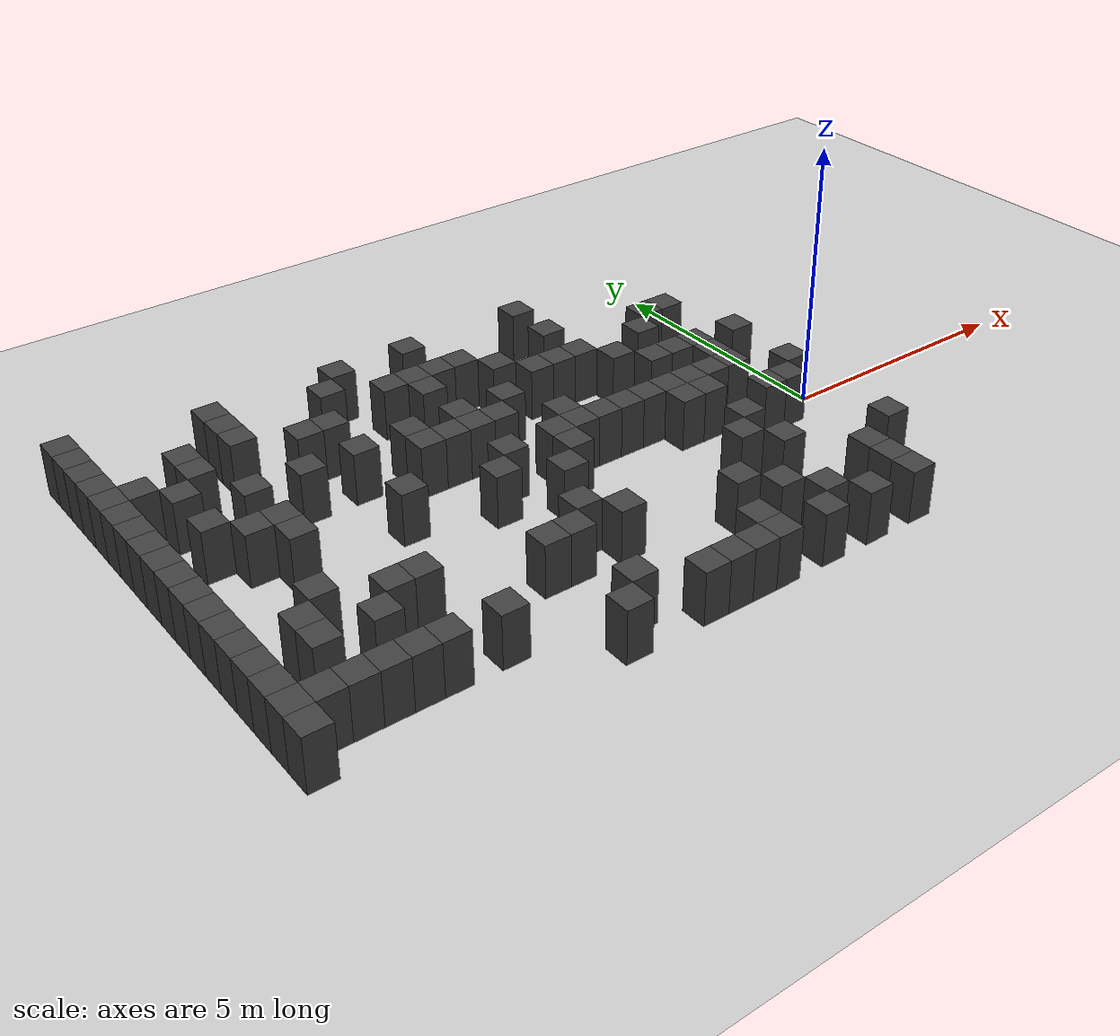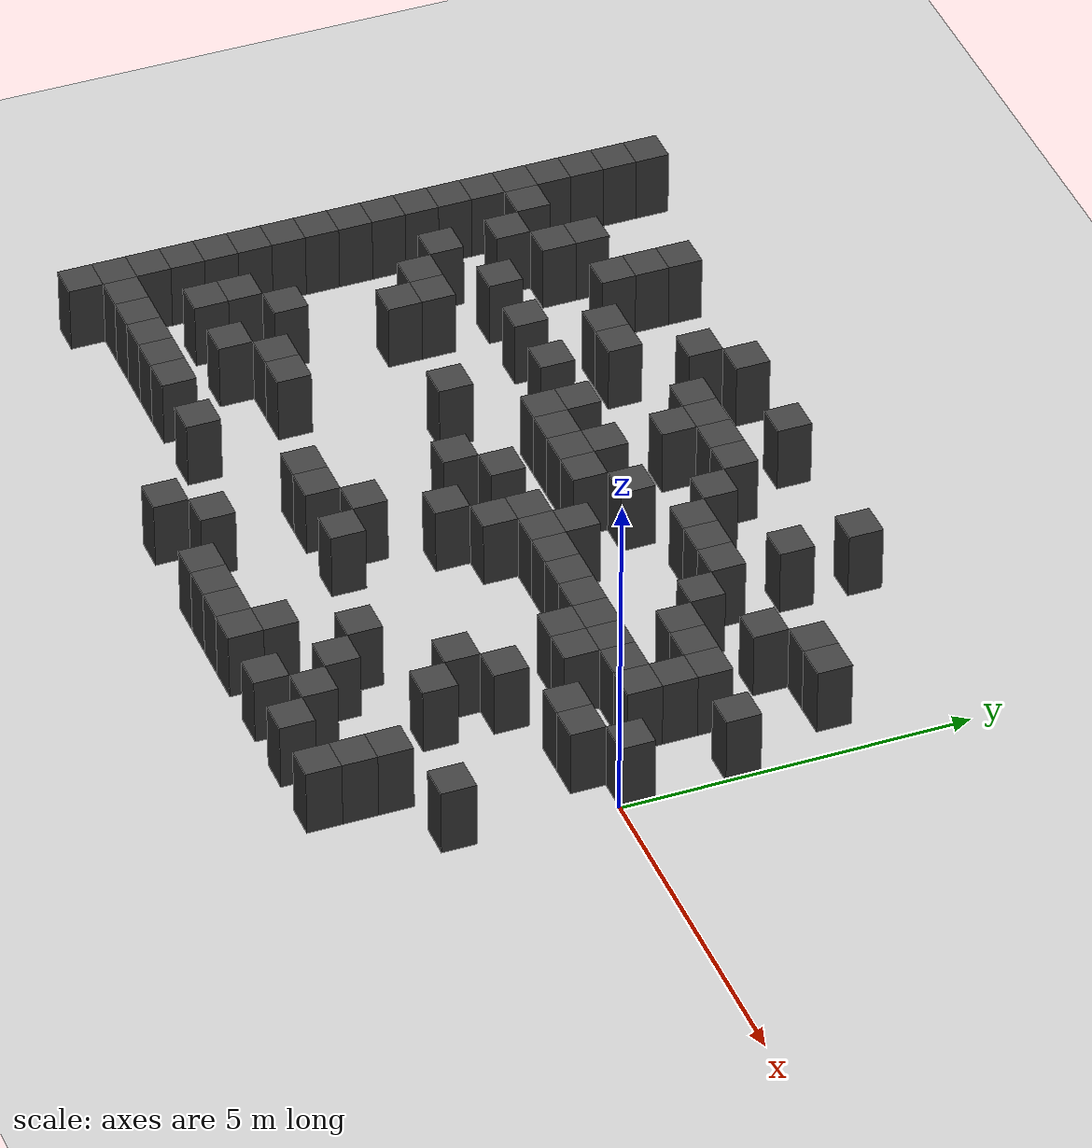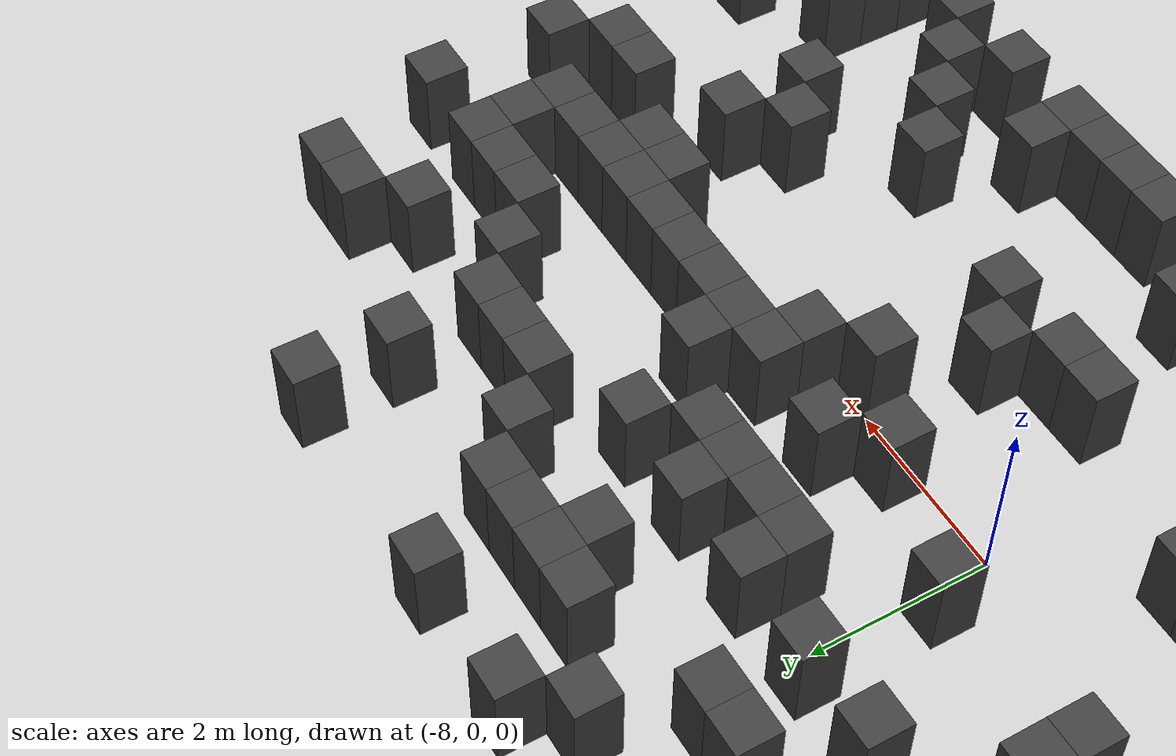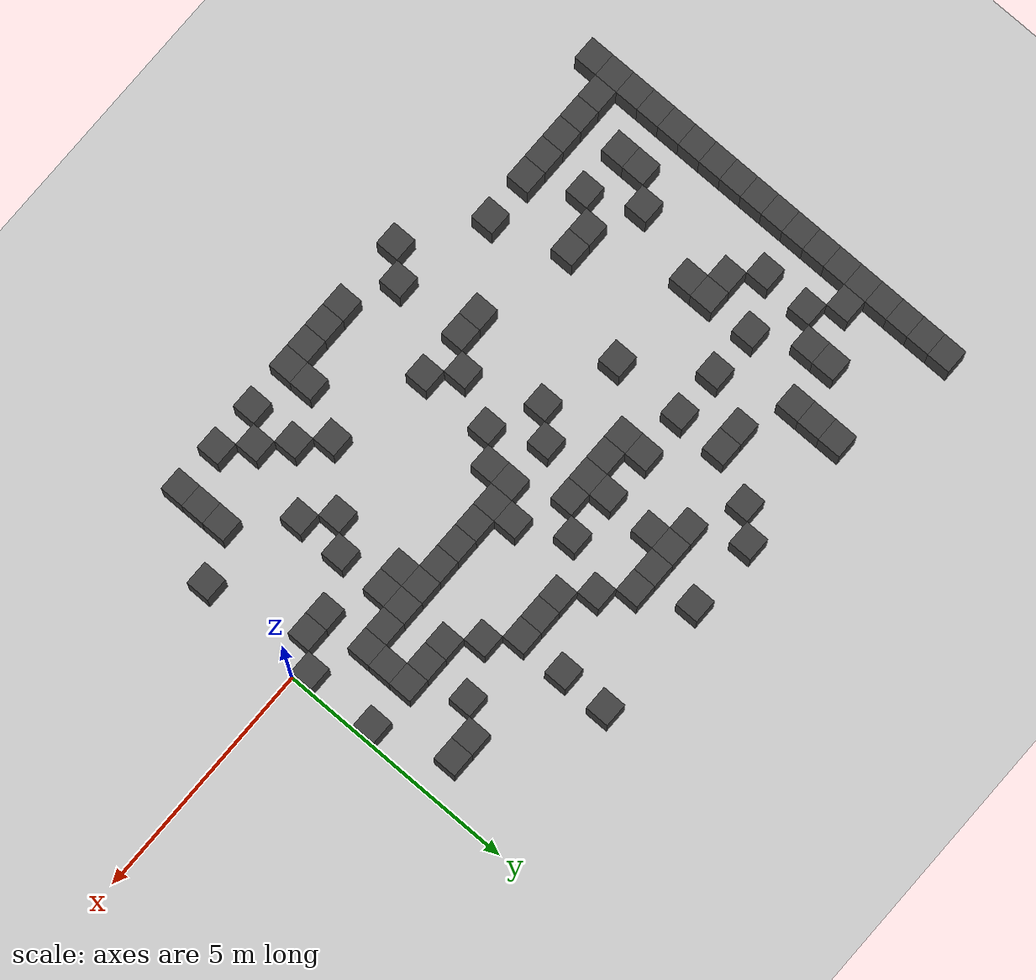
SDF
<sdf version="1.7">
 <world name="map_4682">
  <model name="ground_plane">
   <static>true</static>
   <link name="link">
    <collision name="collision">
     <geometry><plane><normal>0 0 1</normal><size>200 200</size></plane></geometry>
    </collision>
    <visual name="visual">
     <geometry><plane><normal>0 0 1</normal><size>200 200</size></plane></geometry>
     <material><ambient>0.8 0.8 0.8 1</ambient><diffuse>0.8 0.8 0.8 1</diffuse></material>
    </visual>
   </link>
  </model>
  <model name="maze_environment">
   <static>true</static>
   <link name="wall_215">
    <pose>-12.250 5.250 0.500 0 0 0</pose>
    <collision name="col"><geometry><box><size>0.5 0.5 1.0</size></box></geometry></collision>
    <visual name="vis">
     <geometry><box><size>0.5 0.5 1.0</size></box></geometry>
     <material><ambient>0.15 0.15 0.15 1</ambient><diffuse>0.25 0.25 0.25 1</diffuse></material>
    </visual>
   </link>
   <link name="wall_227">
    <pose>-12.250 4.750 0.500 0 0 0</pose>
    <collision name="col"><geometry><box><size>0.5 0.5 1.0</size></box></geometry></collision>
    <visual name="vis">
     <geometry><box><size>0.5 0.5 1.0</size></box></geometry>
     <material><ambient>0.15 0.15 0.15 1</ambient><diffuse>0.25 0.25 0.25 1</diffuse></material>
    </visual>
   </link>
   <link name="wall_228">
    <pose>-9.750 4.750 0.500 0 0 0</pose>
    <collision name="col"><geometry><box><size>0.5 0.5 1.0</size></box></geometry></collision>
    <visual name="vis">
     <geometry><box><size>0.5 0.5 1.0</size></box></geometry>
     <material><ambient>0.15 0.15 0.15 1</ambient><diffuse>0.25 0.25 0.25 1</diffuse></material>
    </visual>
   </link>
   <link name="wall_229">
    <pose>-7.250 4.750 0.500 0 0 0</pose>
    <collision name="col"><geometry><box><size>0.5 0.5 1.0</size></box></geometry></collision>
    <visual name="vis">
     <geometry><box><size>0.5 0.5 1.0</size></box></geometry>
     <material><ambient>0.15 0.15 0.15 1</ambient><diffuse>0.25 0.25 0.25 1</diffuse></material>
    </visual>
   </link>
   <link name="wall_230">
    <pose>-5.750 4.750 0.500 0 0 0</pose>
    <collision name="col"><geometry><box><size>0.5 0.5 1.0</size></box></geometry></collision>
    <visual name="vis">
     <geometry><box><size>0.5 0.5 1.0</size></box></geometry>
     <material><ambient>0.15 0.15 0.15 1</ambient><diffuse>0.25 0.25 0.25 1</diffuse></material>
    </visual>
   </link>
   <link name="wall_231">
    <pose>-3.250 4.750 0.500 0 0 0</pose>
    <collision name="col"><geometry><box><size>0.5 0.5 1.0</size></box></geometry></collision>
    <visual name="vis">
     <geometry><box><size>0.5 0.5 1.0</size></box></geometry>
     <material><ambient>0.15 0.15 0.15 1</ambient><diffuse>0.25 0.25 0.25 1</diffuse></material>
    </visual>
   </link>
   <link name="wall_238">
    <pose>-12.250 4.250 0.500 0 0 0</pose>
    <collision name="col"><geometry><box><size>0.5 0.5 1.0</size></box></geometry></collision>
    <visual name="vis">
     <geometry><box><size>0.5 0.5 1.0</size></box></geometry>
     <material><ambient>0.15 0.15 0.15 1</ambient><diffuse>0.25 0.25 0.25 1</diffuse></material>
    </visual>
   </link>
   <link name="wall_239">
    <pose>-9.750 4.250 0.500 0 0 0</pose>
    <collision name="col"><geometry><box><size>0.5 0.5 1.0</size></box></geometry></collision>
    <visual name="vis">
     <geometry><box><size>0.5 0.5 1.0</size></box></geometry>
     <material><ambient>0.15 0.15 0.15 1</ambient><diffuse>0.25 0.25 0.25 1</diffuse></material>
    </visual>
   </link>
   <link name="wall_240">
    <pose>-7.750 4.250 0.500 0 0 0</pose>
    <collision name="col"><geometry><box><size>0.5 0.5 1.0</size></box></geometry></collision>
    <visual name="vis">
     <geometry><box><size>0.5 0.5 1.0</size></box></geometry>
     <material><ambient>0.15 0.15 0.15 1</ambient><diffuse>0.25 0.25 0.25 1</diffuse></material>
    </visual>
   </link>
   <link name="wall_249">
    <pose>-12.250 3.750 0.500 0 0 0</pose>
    <collision name="col"><geometry><box><size>0.5 0.5 1.0</size></box></geometry></collision>
    <visual name="vis">
     <geometry><box><size>0.5 0.5 1.0</size></box></geometry>
     <material><ambient>0.15 0.15 0.15 1</ambient><diffuse>0.25 0.25 0.25 1</diffuse></material>
    </visual>
   </link>
   <link name="wall_250">
    <pose>-10.750 3.750 0.500 0 0 0</pose>
    <collision name="col"><geometry><box><size>0.5 0.5 1.0</size></box></geometry></collision>
    <visual name="vis">
     <geometry><box><size>0.5 0.5 1.0</size></box></geometry>
     <material><ambient>0.15 0.15 0.15 1</ambient><diffuse>0.25 0.25 0.25 1</diffuse></material>
    </visual>
   </link>
   <link name="wall_251">
    <pose>-9.750 3.750 0.500 0 0 0</pose>
    <collision name="col"><geometry><box><size>0.5 0.5 1.0</size></box></geometry></collision>
    <visual name="vis">
     <geometry><box><size>0.5 0.5 1.0</size></box></geometry>
     <material><ambient>0.15 0.15 0.15 1</ambient><diffuse>0.25 0.25 0.25 1</diffuse></material>
    </visual>
   </link>
   <link name="wall_252">
    <pose>-6.750 3.750 0.500 0 0 0</pose>
    <collision name="col"><geometry><box><size>0.5 0.5 1.0</size></box></geometry></collision>
    <visual name="vis">
     <geometry><box><size>0.5 0.5 1.0</size></box></geometry>
     <material><ambient>0.15 0.15 0.15 1</ambient><diffuse>0.25 0.25 0.25 1</diffuse></material>
    </visual>
   </link>
   <link name="wall_253">
    <pose>-6.250 3.750 0.500 0 0 0</pose>
    <collision name="col"><geometry><box><size>0.5 0.5 1.0</size></box></geometry></collision>
    <visual name="vis">
     <geometry><box><size>0.5 0.5 1.0</size></box></geometry>
     <material><ambient>0.15 0.15 0.15 1</ambient><diffuse>0.25 0.25 0.25 1</diffuse></material>
    </visual>
   </link>
   <link name="wall_254">
    <pose>-5.750 3.750 0.500 0 0 0</pose>
    <collision name="col"><geometry><box><size>0.5 0.5 1.0</size></box></geometry></collision>
    <visual name="vis">
     <geometry><box><size>0.5 0.5 1.0</size></box></geometry>
     <material><ambient>0.15 0.15 0.15 1</ambient><diffuse>0.25 0.25 0.25 1</diffuse></material>
    </visual>
   </link>
   <link name="wall_255">
    <pose>-5.250 3.750 0.500 0 0 0</pose>
    <collision name="col"><geometry><box><size>0.5 0.5 1.0</size></box></geometry></collision>
    <visual name="vis">
     <geometry><box><size>0.5 0.5 1.0</size></box></geometry>
     <material><ambient>0.15 0.15 0.15 1</ambient><diffuse>0.25 0.25 0.25 1</diffuse></material>
    </visual>
   </link>
   <link name="wall_256">
    <pose>-3.250 3.750 0.500 0 0 0</pose>
    <collision name="col"><geometry><box><size>0.5 0.5 1.0</size></box></geometry></collision>
    <visual name="vis">
     <geometry><box><size>0.5 0.5 1.0</size></box></geometry>
     <material><ambient>0.15 0.15 0.15 1</ambient><diffuse>0.25 0.25 0.25 1</diffuse></material>
    </visual>
   </link>
   <link name="wall_264">
    <pose>-12.250 3.250 0.500 0 0 0</pose>
    <collision name="col"><geometry><box><size>0.5 0.5 1.0</size></box></geometry></collision>
    <visual name="vis">
     <geometry><box><size>0.5 0.5 1.0</size></box></geometry>
     <material><ambient>0.15 0.15 0.15 1</ambient><diffuse>0.25 0.25 0.25 1</diffuse></material>
    </visual>
   </link>
   <link name="wall_265">
    <pose>-11.750 3.250 0.500 0 0 0</pose>
    <collision name="col"><geometry><box><size>0.5 0.5 1.0</size></box></geometry></collision>
    <visual name="vis">
     <geometry><box><size>0.5 0.5 1.0</size></box></geometry>
     <material><ambient>0.15 0.15 0.15 1</ambient><diffuse>0.25 0.25 0.25 1</diffuse></material>
    </visual>
   </link>
   <link name="wall_266">
    <pose>-10.750 3.250 0.500 0 0 0</pose>
    <collision name="col"><geometry><box><size>0.5 0.5 1.0</size></box></geometry></collision>
    <visual name="vis">
     <geometry><box><size>0.5 0.5 1.0</size></box></geometry>
     <material><ambient>0.15 0.15 0.15 1</ambient><diffuse>0.25 0.25 0.25 1</diffuse></material>
    </visual>
   </link>
   <link name="wall_267">
    <pose>-8.750 3.250 0.500 0 0 0</pose>
    <collision name="col"><geometry><box><size>0.5 0.5 1.0</size></box></geometry></collision>
    <visual name="vis">
     <geometry><box><size>0.5 0.5 1.0</size></box></geometry>
     <material><ambient>0.15 0.15 0.15 1</ambient><diffuse>0.25 0.25 0.25 1</diffuse></material>
    </visual>
   </link>
   <link name="wall_268">
    <pose>-8.250 3.250 0.500 0 0 0</pose>
    <collision name="col"><geometry><box><size>0.5 0.5 1.0</size></box></geometry></collision>
    <visual name="vis">
     <geometry><box><size>0.5 0.5 1.0</size></box></geometry>
     <material><ambient>0.15 0.15 0.15 1</ambient><diffuse>0.25 0.25 0.25 1</diffuse></material>
    </visual>
   </link>
   <link name="wall_269">
    <pose>-6.250 3.250 0.500 0 0 0</pose>
    <collision name="col"><geometry><box><size>0.5 0.5 1.0</size></box></geometry></collision>
    <visual name="vis">
     <geometry><box><size>0.5 0.5 1.0</size></box></geometry>
     <material><ambient>0.15 0.15 0.15 1</ambient><diffuse>0.25 0.25 0.25 1</diffuse></material>
    </visual>
   </link>
   <link name="wall_270">
    <pose>-4.750 3.250 0.500 0 0 0</pose>
    <collision name="col"><geometry><box><size>0.5 0.5 1.0</size></box></geometry></collision>
    <visual name="vis">
     <geometry><box><size>0.5 0.5 1.0</size></box></geometry>
     <material><ambient>0.15 0.15 0.15 1</ambient><diffuse>0.25 0.25 0.25 1</diffuse></material>
    </visual>
   </link>
   <link name="wall_271">
    <pose>-1.250 3.250 0.500 0 0 0</pose>
    <collision name="col"><geometry><box><size>0.5 0.5 1.0</size></box></geometry></collision>
    <visual name="vis">
     <geometry><box><size>0.5 0.5 1.0</size></box></geometry>
     <material><ambient>0.15 0.15 0.15 1</ambient><diffuse>0.25 0.25 0.25 1</diffuse></material>
    </visual>
   </link>
   <link name="wall_272">
    <pose>-0.750 3.250 0.500 0 0 0</pose>
    <collision name="col"><geometry><box><size>0.5 0.5 1.0</size></box></geometry></collision>
    <visual name="vis">
     <geometry><box><size>0.5 0.5 1.0</size></box></geometry>
     <material><ambient>0.15 0.15 0.15 1</ambient><diffuse>0.25 0.25 0.25 1</diffuse></material>
    </visual>
   </link>
   <link name="wall_279">
    <pose>-12.250 2.750 0.500 0 0 0</pose>
    <collision name="col"><geometry><box><size>0.5 0.5 1.0</size></box></geometry></collision>
    <visual name="vis">
     <geometry><box><size>0.5 0.5 1.0</size></box></geometry>
     <material><ambient>0.15 0.15 0.15 1</ambient><diffuse>0.25 0.25 0.25 1</diffuse></material>
    </visual>
   </link>
   <link name="wall_280">
    <pose>-11.250 2.750 0.500 0 0 0</pose>
    <collision name="col"><geometry><box><size>0.5 0.5 1.0</size></box></geometry></collision>
    <visual name="vis">
     <geometry><box><size>0.5 0.5 1.0</size></box></geometry>
     <material><ambient>0.15 0.15 0.15 1</ambient><diffuse>0.25 0.25 0.25 1</diffuse></material>
    </visual>
   </link>
   <link name="wall_281">
    <pose>-4.250 2.750 0.500 0 0 0</pose>
    <collision name="col"><geometry><box><size>0.5 0.5 1.0</size></box></geometry></collision>
    <visual name="vis">
     <geometry><box><size>0.5 0.5 1.0</size></box></geometry>
     <material><ambient>0.15 0.15 0.15 1</ambient><diffuse>0.25 0.25 0.25 1</diffuse></material>
    </visual>
   </link>
   <link name="wall_282">
    <pose>-3.750 2.750 0.500 0 0 0</pose>
    <collision name="col"><geometry><box><size>0.5 0.5 1.0</size></box></geometry></collision>
    <visual name="vis">
     <geometry><box><size>0.5 0.5 1.0</size></box></geometry>
     <material><ambient>0.15 0.15 0.15 1</ambient><diffuse>0.25 0.25 0.25 1</diffuse></material>
    </visual>
   </link>
   <link name="wall_283">
    <pose>-3.250 2.750 0.500 0 0 0</pose>
    <collision name="col"><geometry><box><size>0.5 0.5 1.0</size></box></geometry></collision>
    <visual name="vis">
     <geometry><box><size>0.5 0.5 1.0</size></box></geometry>
     <material><ambient>0.15 0.15 0.15 1</ambient><diffuse>0.25 0.25 0.25 1</diffuse></material>
    </visual>
   </link>
   <link name="wall_284">
    <pose>-1.750 2.750 0.500 0 0 0</pose>
    <collision name="col"><geometry><box><size>0.5 0.5 1.0</size></box></geometry></collision>
    <visual name="vis">
     <geometry><box><size>0.5 0.5 1.0</size></box></geometry>
     <material><ambient>0.15 0.15 0.15 1</ambient><diffuse>0.25 0.25 0.25 1</diffuse></material>
    </visual>
   </link>
   <link name="wall_294">
    <pose>-12.250 2.250 0.500 0 0 0</pose>
    <collision name="col"><geometry><box><size>0.5 0.5 1.0</size></box></geometry></collision>
    <visual name="vis">
     <geometry><box><size>0.5 0.5 1.0</size></box></geometry>
     <material><ambient>0.15 0.15 0.15 1</ambient><diffuse>0.25 0.25 0.25 1</diffuse></material>
    </visual>
   </link>
   <link name="wall_295">
    <pose>-10.250 2.250 0.500 0 0 0</pose>
    <collision name="col"><geometry><box><size>0.5 0.5 1.0</size></box></geometry></collision>
    <visual name="vis">
     <geometry><box><size>0.5 0.5 1.0</size></box></geometry>
     <material><ambient>0.15 0.15 0.15 1</ambient><diffuse>0.25 0.25 0.25 1</diffuse></material>
    </visual>
   </link>
   <link name="wall_296">
    <pose>-9.250 2.250 0.500 0 0 0</pose>
    <collision name="col"><geometry><box><size>0.5 0.5 1.0</size></box></geometry></collision>
    <visual name="vis">
     <geometry><box><size>0.5 0.5 1.0</size></box></geometry>
     <material><ambient>0.15 0.15 0.15 1</ambient><diffuse>0.25 0.25 0.25 1</diffuse></material>
    </visual>
   </link>
   <link name="wall_297">
    <pose>-8.250 2.250 0.500 0 0 0</pose>
    <collision name="col"><geometry><box><size>0.5 0.5 1.0</size></box></geometry></collision>
    <visual name="vis">
     <geometry><box><size>0.5 0.5 1.0</size></box></geometry>
     <material><ambient>0.15 0.15 0.15 1</ambient><diffuse>0.25 0.25 0.25 1</diffuse></material>
    </visual>
   </link>
   <link name="wall_298">
    <pose>-7.250 2.250 0.500 0 0 0</pose>
    <collision name="col"><geometry><box><size>0.5 0.5 1.0</size></box></geometry></collision>
    <visual name="vis">
     <geometry><box><size>0.5 0.5 1.0</size></box></geometry>
     <material><ambient>0.15 0.15 0.15 1</ambient><diffuse>0.25 0.25 0.25 1</diffuse></material>
    </visual>
   </link>
   <link name="wall_299">
    <pose>-6.250 2.250 0.500 0 0 0</pose>
    <collision name="col"><geometry><box><size>0.5 0.5 1.0</size></box></geometry></collision>
    <visual name="vis">
     <geometry><box><size>0.5 0.5 1.0</size></box></geometry>
     <material><ambient>0.15 0.15 0.15 1</ambient><diffuse>0.25 0.25 0.25 1</diffuse></material>
    </visual>
   </link>
   <link name="wall_300">
    <pose>-5.250 2.250 0.500 0 0 0</pose>
    <collision name="col"><geometry><box><size>0.5 0.5 1.0</size></box></geometry></collision>
    <visual name="vis">
     <geometry><box><size>0.5 0.5 1.0</size></box></geometry>
     <material><ambient>0.15 0.15 0.15 1</ambient><diffuse>0.25 0.25 0.25 1</diffuse></material>
    </visual>
   </link>
   <link name="wall_301">
    <pose>-2.750 2.250 0.500 0 0 0</pose>
    <collision name="col"><geometry><box><size>0.5 0.5 1.0</size></box></geometry></collision>
    <visual name="vis">
     <geometry><box><size>0.5 0.5 1.0</size></box></geometry>
     <material><ambient>0.15 0.15 0.15 1</ambient><diffuse>0.25 0.25 0.25 1</diffuse></material>
    </visual>
   </link>
   <link name="wall_308">
    <pose>-12.250 1.750 0.500 0 0 0</pose>
    <collision name="col"><geometry><box><size>0.5 0.5 1.0</size></box></geometry></collision>
    <visual name="vis">
     <geometry><box><size>0.5 0.5 1.0</size></box></geometry>
     <material><ambient>0.15 0.15 0.15 1</ambient><diffuse>0.25 0.25 0.25 1</diffuse></material>
    </visual>
   </link>
   <link name="wall_309">
    <pose>-11.250 1.750 0.500 0 0 0</pose>
    <collision name="col"><geometry><box><size>0.5 0.5 1.0</size></box></geometry></collision>
    <visual name="vis">
     <geometry><box><size>0.5 0.5 1.0</size></box></geometry>
     <material><ambient>0.15 0.15 0.15 1</ambient><diffuse>0.25 0.25 0.25 1</diffuse></material>
    </visual>
   </link>
   <link name="wall_310">
    <pose>-7.250 1.750 0.500 0 0 0</pose>
    <collision name="col"><geometry><box><size>0.5 0.5 1.0</size></box></geometry></collision>
    <visual name="vis">
     <geometry><box><size>0.5 0.5 1.0</size></box></geometry>
     <material><ambient>0.15 0.15 0.15 1</ambient><diffuse>0.25 0.25 0.25 1</diffuse></material>
    </visual>
   </link>
   <link name="wall_311">
    <pose>-6.750 1.750 0.500 0 0 0</pose>
    <collision name="col"><geometry><box><size>0.5 0.5 1.0</size></box></geometry></collision>
    <visual name="vis">
     <geometry><box><size>0.5 0.5 1.0</size></box></geometry>
     <material><ambient>0.15 0.15 0.15 1</ambient><diffuse>0.25 0.25 0.25 1</diffuse></material>
    </visual>
   </link>
   <link name="wall_312">
    <pose>-6.250 1.750 0.500 0 0 0</pose>
    <collision name="col"><geometry><box><size>0.5 0.5 1.0</size></box></geometry></collision>
    <visual name="vis">
     <geometry><box><size>0.5 0.5 1.0</size></box></geometry>
     <material><ambient>0.15 0.15 0.15 1</ambient><diffuse>0.25 0.25 0.25 1</diffuse></material>
    </visual>
   </link>
   <link name="wall_313">
    <pose>-5.750 1.750 0.500 0 0 0</pose>
    <collision name="col"><geometry><box><size>0.5 0.5 1.0</size></box></geometry></collision>
    <visual name="vis">
     <geometry><box><size>0.5 0.5 1.0</size></box></geometry>
     <material><ambient>0.15 0.15 0.15 1</ambient><diffuse>0.25 0.25 0.25 1</diffuse></material>
    </visual>
   </link>
   <link name="wall_314">
    <pose>-2.250 1.750 0.500 0 0 0</pose>
    <collision name="col"><geometry><box><size>0.5 0.5 1.0</size></box></geometry></collision>
    <visual name="vis">
     <geometry><box><size>0.5 0.5 1.0</size></box></geometry>
     <material><ambient>0.15 0.15 0.15 1</ambient><diffuse>0.25 0.25 0.25 1</diffuse></material>
    </visual>
   </link>
   <link name="wall_315">
    <pose>-1.750 1.750 0.500 0 0 0</pose>
    <collision name="col"><geometry><box><size>0.5 0.5 1.0</size></box></geometry></collision>
    <visual name="vis">
     <geometry><box><size>0.5 0.5 1.0</size></box></geometry>
     <material><ambient>0.15 0.15 0.15 1</ambient><diffuse>0.25 0.25 0.25 1</diffuse></material>
    </visual>
   </link>
   <link name="wall_316">
    <pose>-1.250 1.750 0.500 0 0 0</pose>
    <collision name="col"><geometry><box><size>0.5 0.5 1.0</size></box></geometry></collision>
    <visual name="vis">
     <geometry><box><size>0.5 0.5 1.0</size></box></geometry>
     <material><ambient>0.15 0.15 0.15 1</ambient><diffuse>0.25 0.25 0.25 1</diffuse></material>
    </visual>
   </link>
   <link name="wall_317">
    <pose>-0.250 1.750 0.500 0 0 0</pose>
    <collision name="col"><geometry><box><size>0.5 0.5 1.0</size></box></geometry></collision>
    <visual name="vis">
     <geometry><box><size>0.5 0.5 1.0</size></box></geometry>
     <material><ambient>0.15 0.15 0.15 1</ambient><diffuse>0.25 0.25 0.25 1</diffuse></material>
    </visual>
   </link>
   <link name="wall_325">
    <pose>-12.250 1.250 0.500 0 0 0</pose>
    <collision name="col"><geometry><box><size>0.5 0.5 1.0</size></box></geometry></collision>
    <visual name="vis">
     <geometry><box><size>0.5 0.5 1.0</size></box></geometry>
     <material><ambient>0.15 0.15 0.15 1</ambient><diffuse>0.25 0.25 0.25 1</diffuse></material>
    </visual>
   </link>
   <link name="wall_326">
    <pose>-10.750 1.250 0.500 0 0 0</pose>
    <collision name="col"><geometry><box><size>0.5 0.5 1.0</size></box></geometry></collision>
    <visual name="vis">
     <geometry><box><size>0.5 0.5 1.0</size></box></geometry>
     <material><ambient>0.15 0.15 0.15 1</ambient><diffuse>0.25 0.25 0.25 1</diffuse></material>
    </visual>
   </link>
   <link name="wall_327">
    <pose>-10.250 1.250 0.500 0 0 0</pose>
    <collision name="col"><geometry><box><size>0.5 0.5 1.0</size></box></geometry></collision>
    <visual name="vis">
     <geometry><box><size>0.5 0.5 1.0</size></box></geometry>
     <material><ambient>0.15 0.15 0.15 1</ambient><diffuse>0.25 0.25 0.25 1</diffuse></material>
    </visual>
   </link>
   <link name="wall_328">
    <pose>-4.750 1.250 0.500 0 0 0</pose>
    <collision name="col"><geometry><box><size>0.5 0.5 1.0</size></box></geometry></collision>
    <visual name="vis">
     <geometry><box><size>0.5 0.5 1.0</size></box></geometry>
     <material><ambient>0.15 0.15 0.15 1</ambient><diffuse>0.25 0.25 0.25 1</diffuse></material>
    </visual>
   </link>
   <link name="wall_329">
    <pose>-1.250 1.250 0.500 0 0 0</pose>
    <collision name="col"><geometry><box><size>0.5 0.5 1.0</size></box></geometry></collision>
    <visual name="vis">
     <geometry><box><size>0.5 0.5 1.0</size></box></geometry>
     <material><ambient>0.15 0.15 0.15 1</ambient><diffuse>0.25 0.25 0.25 1</diffuse></material>
    </visual>
   </link>
   <link name="wall_338">
    <pose>-12.250 0.750 0.500 0 0 0</pose>
    <collision name="col"><geometry><box><size>0.5 0.5 1.0</size></box></geometry></collision>
    <visual name="vis">
     <geometry><box><size>0.5 0.5 1.0</size></box></geometry>
     <material><ambient>0.15 0.15 0.15 1</ambient><diffuse>0.25 0.25 0.25 1</diffuse></material>
    </visual>
   </link>
   <link name="wall_339">
    <pose>-10.250 0.750 0.500 0 0 0</pose>
    <collision name="col"><geometry><box><size>0.5 0.5 1.0</size></box></geometry></collision>
    <visual name="vis">
     <geometry><box><size>0.5 0.5 1.0</size></box></geometry>
     <material><ambient>0.15 0.15 0.15 1</ambient><diffuse>0.25 0.25 0.25 1</diffuse></material>
    </visual>
   </link>
   <link name="wall_340">
    <pose>-8.250 0.750 0.500 0 0 0</pose>
    <collision name="col"><geometry><box><size>0.5 0.5 1.0</size></box></geometry></collision>
    <visual name="vis">
     <geometry><box><size>0.5 0.5 1.0</size></box></geometry>
     <material><ambient>0.15 0.15 0.15 1</ambient><diffuse>0.25 0.25 0.25 1</diffuse></material>
    </visual>
   </link>
   <link name="wall_341">
    <pose>-6.250 0.750 0.500 0 0 0</pose>
    <collision name="col"><geometry><box><size>0.5 0.5 1.0</size></box></geometry></collision>
    <visual name="vis">
     <geometry><box><size>0.5 0.5 1.0</size></box></geometry>
     <material><ambient>0.15 0.15 0.15 1</ambient><diffuse>0.25 0.25 0.25 1</diffuse></material>
    </visual>
   </link>
   <link name="wall_342">
    <pose>-5.250 0.750 0.500 0 0 0</pose>
    <collision name="col"><geometry><box><size>0.5 0.5 1.0</size></box></geometry></collision>
    <visual name="vis">
     <geometry><box><size>0.5 0.5 1.0</size></box></geometry>
     <material><ambient>0.15 0.15 0.15 1</ambient><diffuse>0.25 0.25 0.25 1</diffuse></material>
    </visual>
   </link>
   <link name="wall_343">
    <pose>-4.750 0.750 0.500 0 0 0</pose>
    <collision name="col"><geometry><box><size>0.5 0.5 1.0</size></box></geometry></collision>
    <visual name="vis">
     <geometry><box><size>0.5 0.5 1.0</size></box></geometry>
     <material><ambient>0.15 0.15 0.15 1</ambient><diffuse>0.25 0.25 0.25 1</diffuse></material>
    </visual>
   </link>
   <link name="wall_344">
    <pose>-4.250 0.750 0.500 0 0 0</pose>
    <collision name="col"><geometry><box><size>0.5 0.5 1.0</size></box></geometry></collision>
    <visual name="vis">
     <geometry><box><size>0.5 0.5 1.0</size></box></geometry>
     <material><ambient>0.15 0.15 0.15 1</ambient><diffuse>0.25 0.25 0.25 1</diffuse></material>
    </visual>
   </link>
   <link name="wall_345">
    <pose>-3.750 0.750 0.500 0 0 0</pose>
    <collision name="col"><geometry><box><size>0.5 0.5 1.0</size></box></geometry></collision>
    <visual name="vis">
     <geometry><box><size>0.5 0.5 1.0</size></box></geometry>
     <material><ambient>0.15 0.15 0.15 1</ambient><diffuse>0.25 0.25 0.25 1</diffuse></material>
    </visual>
   </link>
   <link name="wall_346">
    <pose>-3.250 0.750 0.500 0 0 0</pose>
    <collision name="col"><geometry><box><size>0.5 0.5 1.0</size></box></geometry></collision>
    <visual name="vis">
     <geometry><box><size>0.5 0.5 1.0</size></box></geometry>
     <material><ambient>0.15 0.15 0.15 1</ambient><diffuse>0.25 0.25 0.25 1</diffuse></material>
    </visual>
   </link>
   <link name="wall_347">
    <pose>-2.750 0.750 0.500 0 0 0</pose>
    <collision name="col"><geometry><box><size>0.5 0.5 1.0</size></box></geometry></collision>
    <visual name="vis">
     <geometry><box><size>0.5 0.5 1.0</size></box></geometry>
     <material><ambient>0.15 0.15 0.15 1</ambient><diffuse>0.25 0.25 0.25 1</diffuse></material>
    </visual>
   </link>
   <link name="wall_348">
    <pose>-2.250 0.750 0.500 0 0 0</pose>
    <collision name="col"><geometry><box><size>0.5 0.5 1.0</size></box></geometry></collision>
    <visual name="vis">
     <geometry><box><size>0.5 0.5 1.0</size></box></geometry>
     <material><ambient>0.15 0.15 0.15 1</ambient><diffuse>0.25 0.25 0.25 1</diffuse></material>
    </visual>
   </link>
   <link name="wall_349">
    <pose>-1.750 0.750 0.500 0 0 0</pose>
    <collision name="col"><geometry><box><size>0.5 0.5 1.0</size></box></geometry></collision>
    <visual name="vis">
     <geometry><box><size>0.5 0.5 1.0</size></box></geometry>
     <material><ambient>0.15 0.15 0.15 1</ambient><diffuse>0.25 0.25 0.25 1</diffuse></material>
    </visual>
   </link>
   <link name="wall_350">
    <pose>-1.250 0.750 0.500 0 0 0</pose>
    <collision name="col"><geometry><box><size>0.5 0.5 1.0</size></box></geometry></collision>
    <visual name="vis">
     <geometry><box><size>0.5 0.5 1.0</size></box></geometry>
     <material><ambient>0.15 0.15 0.15 1</ambient><diffuse>0.25 0.25 0.25 1</diffuse></material>
    </visual>
   </link>
   <link name="wall_358">
    <pose>-12.250 0.250 0.500 0 0 0</pose>
    <collision name="col"><geometry><box><size>0.5 0.5 1.0</size></box></geometry></collision>
    <visual name="vis">
     <geometry><box><size>0.5 0.5 1.0</size></box></geometry>
     <material><ambient>0.15 0.15 0.15 1</ambient><diffuse>0.25 0.25 0.25 1</diffuse></material>
    </visual>
   </link>
   <link name="wall_359">
    <pose>-6.750 0.250 0.500 0 0 0</pose>
    <collision name="col"><geometry><box><size>0.5 0.5 1.0</size></box></geometry></collision>
    <visual name="vis">
     <geometry><box><size>0.5 0.5 1.0</size></box></geometry>
     <material><ambient>0.15 0.15 0.15 1</ambient><diffuse>0.25 0.25 0.25 1</diffuse></material>
    </visual>
   </link>
   <link name="wall_360">
    <pose>-5.250 0.250 0.500 0 0 0</pose>
    <collision name="col"><geometry><box><size>0.5 0.5 1.0</size></box></geometry></collision>
    <visual name="vis">
     <geometry><box><size>0.5 0.5 1.0</size></box></geometry>
     <material><ambient>0.15 0.15 0.15 1</ambient><diffuse>0.25 0.25 0.25 1</diffuse></material>
    </visual>
   </link>
   <link name="wall_361">
    <pose>-2.750 0.250 0.500 0 0 0</pose>
    <collision name="col"><geometry><box><size>0.5 0.5 1.0</size></box></geometry></collision>
    <visual name="vis">
     <geometry><box><size>0.5 0.5 1.0</size></box></geometry>
     <material><ambient>0.15 0.15 0.15 1</ambient><diffuse>0.25 0.25 0.25 1</diffuse></material>
    </visual>
   </link>
   <link name="wall_362">
    <pose>-2.250 0.250 0.500 0 0 0</pose>
    <collision name="col"><geometry><box><size>0.5 0.5 1.0</size></box></geometry></collision>
    <visual name="vis">
     <geometry><box><size>0.5 0.5 1.0</size></box></geometry>
     <material><ambient>0.15 0.15 0.15 1</ambient><diffuse>0.25 0.25 0.25 1</diffuse></material>
    </visual>
   </link>
   <link name="wall_363">
    <pose>-0.250 0.250 0.500 0 0 0</pose>
    <collision name="col"><geometry><box><size>0.5 0.5 1.0</size></box></geometry></collision>
    <visual name="vis">
     <geometry><box><size>0.5 0.5 1.0</size></box></geometry>
     <material><ambient>0.15 0.15 0.15 1</ambient><diffuse>0.25 0.25 0.25 1</diffuse></material>
    </visual>
   </link>
   <link name="wall_369">
    <pose>-12.250 -0.250 0.500 0 0 0</pose>
    <collision name="col"><geometry><box><size>0.5 0.5 1.0</size></box></geometry></collision>
    <visual name="vis">
     <geometry><box><size>0.5 0.5 1.0</size></box></geometry>
     <material><ambient>0.15 0.15 0.15 1</ambient><diffuse>0.25 0.25 0.25 1</diffuse></material>
    </visual>
   </link>
   <link name="wall_370">
    <pose>-5.750 -0.250 0.500 0 0 0</pose>
    <collision name="col"><geometry><box><size>0.5 0.5 1.0</size></box></geometry></collision>
    <visual name="vis">
     <geometry><box><size>0.5 0.5 1.0</size></box></geometry>
     <material><ambient>0.15 0.15 0.15 1</ambient><diffuse>0.25 0.25 0.25 1</diffuse></material>
    </visual>
   </link>
   <link name="wall_371">
    <pose>-1.250 -0.250 0.500 0 0 0</pose>
    <collision name="col"><geometry><box><size>0.5 0.5 1.0</size></box></geometry></collision>
    <visual name="vis">
     <geometry><box><size>0.5 0.5 1.0</size></box></geometry>
     <material><ambient>0.15 0.15 0.15 1</ambient><diffuse>0.25 0.25 0.25 1</diffuse></material>
    </visual>
   </link>
   <link name="wall_372">
    <pose>-0.750 -0.250 0.500 0 0 0</pose>
    <collision name="col"><geometry><box><size>0.5 0.5 1.0</size></box></geometry></collision>
    <visual name="vis">
     <geometry><box><size>0.5 0.5 1.0</size></box></geometry>
     <material><ambient>0.15 0.15 0.15 1</ambient><diffuse>0.25 0.25 0.25 1</diffuse></material>
    </visual>
   </link>
   <link name="wall_379">
    <pose>-12.250 -0.750 0.500 0 0 0</pose>
    <collision name="col"><geometry><box><size>0.5 0.5 1.0</size></box></geometry></collision>
    <visual name="vis">
     <geometry><box><size>0.5 0.5 1.0</size></box></geometry>
     <material><ambient>0.15 0.15 0.15 1</ambient><diffuse>0.25 0.25 0.25 1</diffuse></material>
    </visual>
   </link>
   <link name="wall_380">
    <pose>-10.750 -0.750 0.500 0 0 0</pose>
    <collision name="col"><geometry><box><size>0.5 0.5 1.0</size></box></geometry></collision>
    <visual name="vis">
     <geometry><box><size>0.5 0.5 1.0</size></box></geometry>
     <material><ambient>0.15 0.15 0.15 1</ambient><diffuse>0.25 0.25 0.25 1</diffuse></material>
    </visual>
   </link>
   <link name="wall_381">
    <pose>-2.250 -0.750 0.500 0 0 0</pose>
    <collision name="col"><geometry><box><size>0.5 0.5 1.0</size></box></geometry></collision>
    <visual name="vis">
     <geometry><box><size>0.5 0.5 1.0</size></box></geometry>
     <material><ambient>0.15 0.15 0.15 1</ambient><diffuse>0.25 0.25 0.25 1</diffuse></material>
    </visual>
   </link>
   <link name="wall_388">
    <pose>-12.250 -1.250 0.500 0 0 0</pose>
    <collision name="col"><geometry><box><size>0.5 0.5 1.0</size></box></geometry></collision>
    <visual name="vis">
     <geometry><box><size>0.5 0.5 1.0</size></box></geometry>
     <material><ambient>0.15 0.15 0.15 1</ambient><diffuse>0.25 0.25 0.25 1</diffuse></material>
    </visual>
   </link>
   <link name="wall_389">
    <pose>-11.250 -1.250 0.500 0 0 0</pose>
    <collision name="col"><geometry><box><size>0.5 0.5 1.0</size></box></geometry></collision>
    <visual name="vis">
     <geometry><box><size>0.5 0.5 1.0</size></box></geometry>
     <material><ambient>0.15 0.15 0.15 1</ambient><diffuse>0.25 0.25 0.25 1</diffuse></material>
    </visual>
   </link>
   <link name="wall_390">
    <pose>-9.750 -1.250 0.500 0 0 0</pose>
    <collision name="col"><geometry><box><size>0.5 0.5 1.0</size></box></geometry></collision>
    <visual name="vis">
     <geometry><box><size>0.5 0.5 1.0</size></box></geometry>
     <material><ambient>0.15 0.15 0.15 1</ambient><diffuse>0.25 0.25 0.25 1</diffuse></material>
    </visual>
   </link>
   <link name="wall_391">
    <pose>-9.250 -1.250 0.500 0 0 0</pose>
    <collision name="col"><geometry><box><size>0.5 0.5 1.0</size></box></geometry></collision>
    <visual name="vis">
     <geometry><box><size>0.5 0.5 1.0</size></box></geometry>
     <material><ambient>0.15 0.15 0.15 1</ambient><diffuse>0.25 0.25 0.25 1</diffuse></material>
    </visual>
   </link>
   <link name="wall_392">
    <pose>-6.250 -1.250 0.500 0 0 0</pose>
    <collision name="col"><geometry><box><size>0.5 0.5 1.0</size></box></geometry></collision>
    <visual name="vis">
     <geometry><box><size>0.5 0.5 1.0</size></box></geometry>
     <material><ambient>0.15 0.15 0.15 1</ambient><diffuse>0.25 0.25 0.25 1</diffuse></material>
    </visual>
   </link>
   <link name="wall_393">
    <pose>-2.750 -1.250 0.500 0 0 0</pose>
    <collision name="col"><geometry><box><size>0.5 0.5 1.0</size></box></geometry></collision>
    <visual name="vis">
     <geometry><box><size>0.5 0.5 1.0</size></box></geometry>
     <material><ambient>0.15 0.15 0.15 1</ambient><diffuse>0.25 0.25 0.25 1</diffuse></material>
    </visual>
   </link>
   <link name="wall_401">
    <pose>-12.250 -1.750 0.500 0 0 0</pose>
    <collision name="col"><geometry><box><size>0.5 0.5 1.0</size></box></geometry></collision>
    <visual name="vis">
     <geometry><box><size>0.5 0.5 1.0</size></box></geometry>
     <material><ambient>0.15 0.15 0.15 1</ambient><diffuse>0.25 0.25 0.25 1</diffuse></material>
    </visual>
   </link>
   <link name="wall_402">
    <pose>-11.250 -1.750 0.500 0 0 0</pose>
    <collision name="col"><geometry><box><size>0.5 0.5 1.0</size></box></geometry></collision>
    <visual name="vis">
     <geometry><box><size>0.5 0.5 1.0</size></box></geometry>
     <material><ambient>0.15 0.15 0.15 1</ambient><diffuse>0.25 0.25 0.25 1</diffuse></material>
    </visual>
   </link>
   <link name="wall_403">
    <pose>-10.250 -1.750 0.500 0 0 0</pose>
    <collision name="col"><geometry><box><size>0.5 0.5 1.0</size></box></geometry></collision>
    <visual name="vis">
     <geometry><box><size>0.5 0.5 1.0</size></box></geometry>
     <material><ambient>0.15 0.15 0.15 1</ambient><diffuse>0.25 0.25 0.25 1</diffuse></material>
    </visual>
   </link>
   <link name="wall_404">
    <pose>-7.250 -1.750 0.500 0 0 0</pose>
    <collision name="col"><geometry><box><size>0.5 0.5 1.0</size></box></geometry></collision>
    <visual name="vis">
     <geometry><box><size>0.5 0.5 1.0</size></box></geometry>
     <material><ambient>0.15 0.15 0.15 1</ambient><diffuse>0.25 0.25 0.25 1</diffuse></material>
    </visual>
   </link>
   <link name="wall_405">
    <pose>-6.750 -1.750 0.500 0 0 0</pose>
    <collision name="col"><geometry><box><size>0.5 0.5 1.0</size></box></geometry></collision>
    <visual name="vis">
     <geometry><box><size>0.5 0.5 1.0</size></box></geometry>
     <material><ambient>0.15 0.15 0.15 1</ambient><diffuse>0.25 0.25 0.25 1</diffuse></material>
    </visual>
   </link>
   <link name="wall_406">
    <pose>-5.750 -1.750 0.500 0 0 0</pose>
    <collision name="col"><geometry><box><size>0.5 0.5 1.0</size></box></geometry></collision>
    <visual name="vis">
     <geometry><box><size>0.5 0.5 1.0</size></box></geometry>
     <material><ambient>0.15 0.15 0.15 1</ambient><diffuse>0.25 0.25 0.25 1</diffuse></material>
    </visual>
   </link>
   <link name="wall_407">
    <pose>-2.250 -1.750 0.500 0 0 0</pose>
    <collision name="col"><geometry><box><size>0.5 0.5 1.0</size></box></geometry></collision>
    <visual name="vis">
     <geometry><box><size>0.5 0.5 1.0</size></box></geometry>
     <material><ambient>0.15 0.15 0.15 1</ambient><diffuse>0.25 0.25 0.25 1</diffuse></material>
    </visual>
   </link>
   <link name="wall_413">
    <pose>-12.250 -2.250 0.500 0 0 0</pose>
    <collision name="col"><geometry><box><size>0.5 0.5 1.0</size></box></geometry></collision>
    <visual name="vis">
     <geometry><box><size>0.5 0.5 1.0</size></box></geometry>
     <material><ambient>0.15 0.15 0.15 1</ambient><diffuse>0.25 0.25 0.25 1</diffuse></material>
    </visual>
   </link>
   <link name="wall_414">
    <pose>-3.750 -2.250 0.500 0 0 0</pose>
    <collision name="col"><geometry><box><size>0.5 0.5 1.0</size></box></geometry></collision>
    <visual name="vis">
     <geometry><box><size>0.5 0.5 1.0</size></box></geometry>
     <material><ambient>0.15 0.15 0.15 1</ambient><diffuse>0.25 0.25 0.25 1</diffuse></material>
    </visual>
   </link>
   <link name="wall_415">
    <pose>-0.250 -2.250 0.500 0 0 0</pose>
    <collision name="col"><geometry><box><size>0.5 0.5 1.0</size></box></geometry></collision>
    <visual name="vis">
     <geometry><box><size>0.5 0.5 1.0</size></box></geometry>
     <material><ambient>0.15 0.15 0.15 1</ambient><diffuse>0.25 0.25 0.25 1</diffuse></material>
    </visual>
   </link>
   <link name="wall_420">
    <pose>-12.250 -2.750 0.500 0 0 0</pose>
    <collision name="col"><geometry><box><size>0.5 0.5 1.0</size></box></geometry></collision>
    <visual name="vis">
     <geometry><box><size>0.5 0.5 1.0</size></box></geometry>
     <material><ambient>0.15 0.15 0.15 1</ambient><diffuse>0.25 0.25 0.25 1</diffuse></material>
    </visual>
   </link>
   <link name="wall_421">
    <pose>-11.750 -2.750 0.500 0 0 0</pose>
    <collision name="col"><geometry><box><size>0.5 0.5 1.0</size></box></geometry></collision>
    <visual name="vis">
     <geometry><box><size>0.5 0.5 1.0</size></box></geometry>
     <material><ambient>0.15 0.15 0.15 1</ambient><diffuse>0.25 0.25 0.25 1</diffuse></material>
    </visual>
   </link>
   <link name="wall_422">
    <pose>-11.250 -2.750 0.500 0 0 0</pose>
    <collision name="col"><geometry><box><size>0.5 0.5 1.0</size></box></geometry></collision>
    <visual name="vis">
     <geometry><box><size>0.5 0.5 1.0</size></box></geometry>
     <material><ambient>0.15 0.15 0.15 1</ambient><diffuse>0.25 0.25 0.25 1</diffuse></material>
    </visual>
   </link>
   <link name="wall_423">
    <pose>-10.750 -2.750 0.500 0 0 0</pose>
    <collision name="col"><geometry><box><size>0.5 0.5 1.0</size></box></geometry></collision>
    <visual name="vis">
     <geometry><box><size>0.5 0.5 1.0</size></box></geometry>
     <material><ambient>0.15 0.15 0.15 1</ambient><diffuse>0.25 0.25 0.25 1</diffuse></material>
    </visual>
   </link>
   <link name="wall_424">
    <pose>-10.250 -2.750 0.500 0 0 0</pose>
    <collision name="col"><geometry><box><size>0.5 0.5 1.0</size></box></geometry></collision>
    <visual name="vis">
     <geometry><box><size>0.5 0.5 1.0</size></box></geometry>
     <material><ambient>0.15 0.15 0.15 1</ambient><diffuse>0.25 0.25 0.25 1</diffuse></material>
    </visual>
   </link>
   <link name="wall_425">
    <pose>-9.750 -2.750 0.500 0 0 0</pose>
    <collision name="col"><geometry><box><size>0.5 0.5 1.0</size></box></geometry></collision>
    <visual name="vis">
     <geometry><box><size>0.5 0.5 1.0</size></box></geometry>
     <material><ambient>0.15 0.15 0.15 1</ambient><diffuse>0.25 0.25 0.25 1</diffuse></material>
    </visual>
   </link>
   <link name="wall_426">
    <pose>-8.750 -2.750 0.500 0 0 0</pose>
    <collision name="col"><geometry><box><size>0.5 0.5 1.0</size></box></geometry></collision>
    <visual name="vis">
     <geometry><box><size>0.5 0.5 1.0</size></box></geometry>
     <material><ambient>0.15 0.15 0.15 1</ambient><diffuse>0.25 0.25 0.25 1</diffuse></material>
    </visual>
   </link>
   <link name="wall_427">
    <pose>-3.250 -2.750 0.500 0 0 0</pose>
    <collision name="col"><geometry><box><size>0.5 0.5 1.0</size></box></geometry></collision>
    <visual name="vis">
     <geometry><box><size>0.5 0.5 1.0</size></box></geometry>
     <material><ambient>0.15 0.15 0.15 1</ambient><diffuse>0.25 0.25 0.25 1</diffuse></material>
    </visual>
   </link>
   <link name="wall_428">
    <pose>-1.250 -2.750 0.500 0 0 0</pose>
    <collision name="col"><geometry><box><size>0.5 0.5 1.0</size></box></geometry></collision>
    <visual name="vis">
     <geometry><box><size>0.5 0.5 1.0</size></box></geometry>
     <material><ambient>0.15 0.15 0.15 1</ambient><diffuse>0.25 0.25 0.25 1</diffuse></material>
    </visual>
   </link>
   <link name="wall_439">
    <pose>-12.250 -3.250 0.500 0 0 0</pose>
    <collision name="col"><geometry><box><size>0.5 0.5 1.0</size></box></geometry></collision>
    <visual name="vis">
     <geometry><box><size>0.5 0.5 1.0</size></box></geometry>
     <material><ambient>0.15 0.15 0.15 1</ambient><diffuse>0.25 0.25 0.25 1</diffuse></material>
    </visual>
   </link>
   <link name="wall_440">
    <pose>-6.750 -3.250 0.500 0 0 0</pose>
    <collision name="col"><geometry><box><size>0.5 0.5 1.0</size></box></geometry></collision>
    <visual name="vis">
     <geometry><box><size>0.5 0.5 1.0</size></box></geometry>
     <material><ambient>0.15 0.15 0.15 1</ambient><diffuse>0.25 0.25 0.25 1</diffuse></material>
    </visual>
   </link>
   <link name="wall_441">
    <pose>-4.250 -3.250 0.500 0 0 0</pose>
    <collision name="col"><geometry><box><size>0.5 0.5 1.0</size></box></geometry></collision>
    <visual name="vis">
     <geometry><box><size>0.5 0.5 1.0</size></box></geometry>
     <material><ambient>0.15 0.15 0.15 1</ambient><diffuse>0.25 0.25 0.25 1</diffuse></material>
    </visual>
   </link>
   <link name="wall_442">
    <pose>-2.750 -3.250 0.500 0 0 0</pose>
    <collision name="col"><geometry><box><size>0.5 0.5 1.0</size></box></geometry></collision>
    <visual name="vis">
     <geometry><box><size>0.5 0.5 1.0</size></box></geometry>
     <material><ambient>0.15 0.15 0.15 1</ambient><diffuse>0.25 0.25 0.25 1</diffuse></material>
    </visual>
   </link>
   <link name="wall_443">
    <pose>-1.250 -3.250 0.500 0 0 0</pose>
    <collision name="col"><geometry><box><size>0.5 0.5 1.0</size></box></geometry></collision>
    <visual name="vis">
     <geometry><box><size>0.5 0.5 1.0</size></box></geometry>
     <material><ambient>0.15 0.15 0.15 1</ambient><diffuse>0.25 0.25 0.25 1</diffuse></material>
    </visual>
   </link>
   <link name="wall_449">
    <pose>-7.250 -3.750 0.500 0 0 0</pose>
    <collision name="col"><geometry><box><size>0.5 0.5 1.0</size></box></geometry></collision>
    <visual name="vis">
     <geometry><box><size>0.5 0.5 1.0</size></box></geometry>
     <material><ambient>0.15 0.15 0.15 1</ambient><diffuse>0.25 0.25 0.25 1</diffuse></material>
    </visual>
   </link>
   <link name="wall_450">
    <pose>-5.750 -3.750 0.500 0 0 0</pose>
    <collision name="col"><geometry><box><size>0.5 0.5 1.0</size></box></geometry></collision>
    <visual name="vis">
     <geometry><box><size>0.5 0.5 1.0</size></box></geometry>
     <material><ambient>0.15 0.15 0.15 1</ambient><diffuse>0.25 0.25 0.25 1</diffuse></material>
    </visual>
   </link>
   <link name="wall_451">
    <pose>-5.250 -3.750 0.500 0 0 0</pose>
    <collision name="col"><geometry><box><size>0.5 0.5 1.0</size></box></geometry></collision>
    <visual name="vis">
     <geometry><box><size>0.5 0.5 1.0</size></box></geometry>
     <material><ambient>0.15 0.15 0.15 1</ambient><diffuse>0.25 0.25 0.25 1</diffuse></material>
    </visual>
   </link>
   <link name="wall_452">
    <pose>-4.750 -3.750 0.500 0 0 0</pose>
    <collision name="col"><geometry><box><size>0.5 0.5 1.0</size></box></geometry></collision>
    <visual name="vis">
     <geometry><box><size>0.5 0.5 1.0</size></box></geometry>
     <material><ambient>0.15 0.15 0.15 1</ambient><diffuse>0.25 0.25 0.25 1</diffuse></material>
    </visual>
   </link>
   <link name="wall_453">
    <pose>-4.250 -3.750 0.500 0 0 0</pose>
    <collision name="col"><geometry><box><size>0.5 0.5 1.0</size></box></geometry></collision>
    <visual name="vis">
     <geometry><box><size>0.5 0.5 1.0</size></box></geometry>
     <material><ambient>0.15 0.15 0.15 1</ambient><diffuse>0.25 0.25 0.25 1</diffuse></material>
    </visual>
   </link>
   <link name="wall_454">
    <pose>-3.250 -3.750 0.500 0 0 0</pose>
    <collision name="col"><geometry><box><size>0.5 0.5 1.0</size></box></geometry></collision>
    <visual name="vis">
     <geometry><box><size>0.5 0.5 1.0</size></box></geometry>
     <material><ambient>0.15 0.15 0.15 1</ambient><diffuse>0.25 0.25 0.25 1</diffuse></material>
    </visual>
   </link>
   <link name="wall_455">
    <pose>-2.250 -3.750 0.500 0 0 0</pose>
    <collision name="col"><geometry><box><size>0.5 0.5 1.0</size></box></geometry></collision>
    <visual name="vis">
     <geometry><box><size>0.5 0.5 1.0</size></box></geometry>
     <material><ambient>0.15 0.15 0.15 1</ambient><diffuse>0.25 0.25 0.25 1</diffuse></material>
    </visual>
   </link>
   <link name="wall_456">
    <pose>-1.250 -3.750 0.500 0 0 0</pose>
    <collision name="col"><geometry><box><size>0.5 0.5 1.0</size></box></geometry></collision>
    <visual name="vis">
     <geometry><box><size>0.5 0.5 1.0</size></box></geometry>
     <material><ambient>0.15 0.15 0.15 1</ambient><diffuse>0.25 0.25 0.25 1</diffuse></material>
    </visual>
   </link>
  </model>
 </world>
</sdf>
